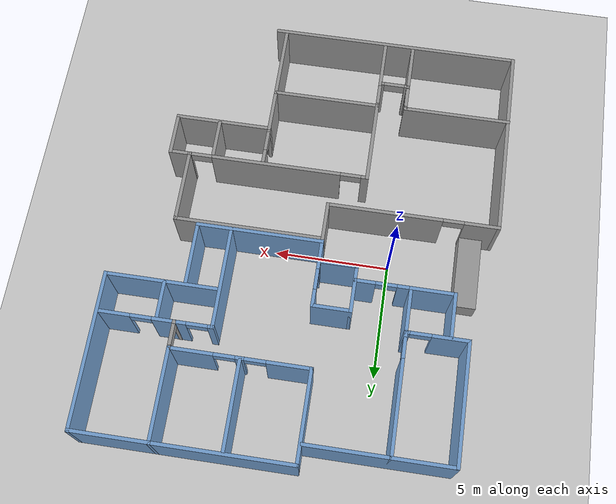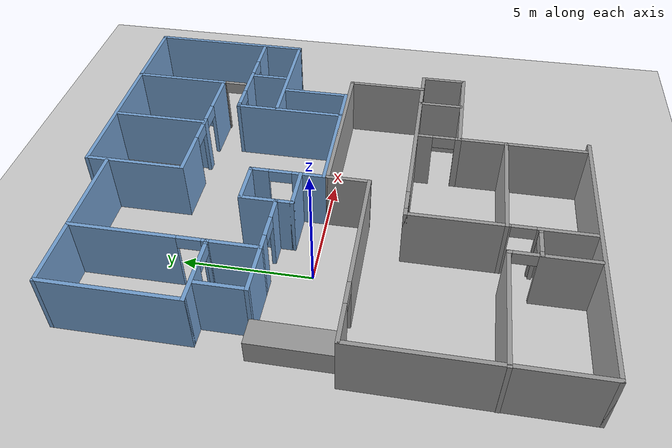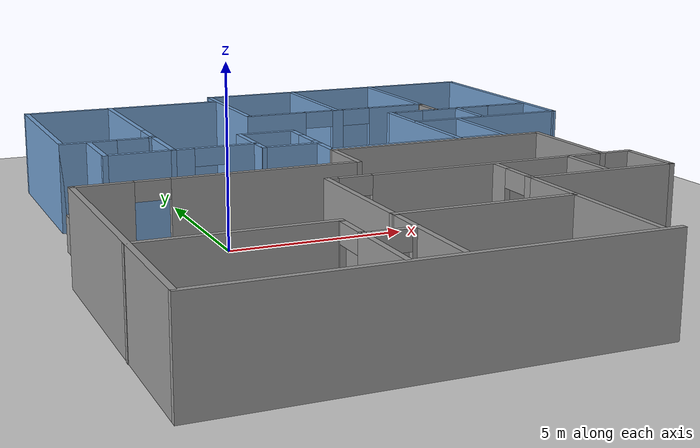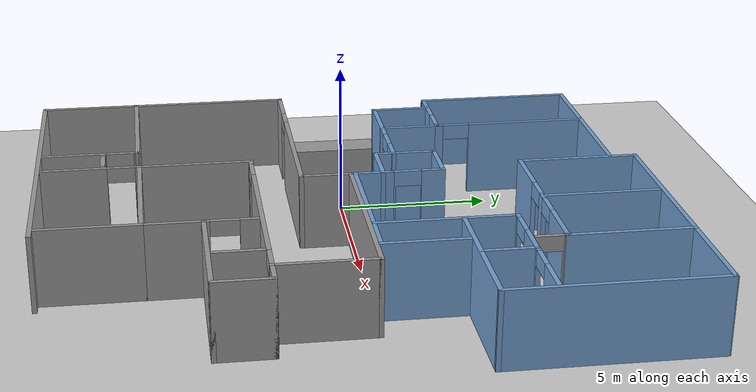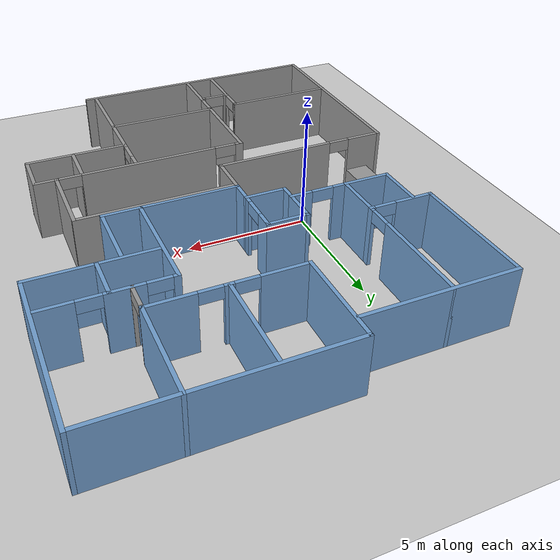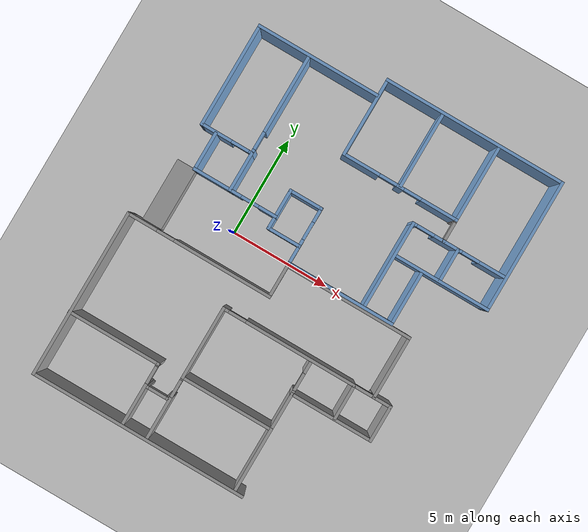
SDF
<sdf version="1.7">
 <world name="default">
  <light name="sun" type="directional">
   <pose>0 0 10 0 -0 0</pose>
   <diffuse>0.8 0.8 0.8 1</diffuse>
   <specular>0.2 0.2 0.2 1</specular>
   <attenuation>
    <range>1000</range>
    <constant>0.9</constant>
    <linear>0.01</linear>
    <quadratic>0.001</quadratic>
   </attenuation>
   <direction>-0.5 0.1 -0.9</direction>
   <spot><inner_angle>0</inner_angle><outer_angle>0</outer_angle><falloff>0</falloff></spot>
  </light>
  <model name="ground_plane">
   <static>1</static>
   <link name="link">
    <collision name="collision">
     <geometry><plane><normal>0 0 1</normal><size>100 100</size></plane></geometry>
     <surface>
      <contact><collide_bitmask>65535</collide_bitmask></contact>
      <friction><ode><mu>100</mu><mu2>50</mu2></ode></friction>
     </surface>
    </collision>
    <visual name="visual">
     <cast_shadows>0</cast_shadows>
     <geometry><plane><normal>0 0 1</normal><size>100 100</size></plane></geometry>
     <material>
      <script><uri>file://media/materials/scripts/gazebo.material</uri><name>Gazebo/Grey</name></script>
     </material>
    </visual>
   </link>
  </model>
  <gravity>0 0 -9.8</gravity>
  <magnetic_field>6e-06 2.3e-05 -4.2e-05</magnetic_field>
  <atmosphere type="adiabatic"/>
  <physics type="ode">
   <max_step_size>0.001</max_step_size>
   <real_time_factor>1</real_time_factor>
   <real_time_update_rate>1000</real_time_update_rate>
  </physics>
  <scene><ambient>0.4 0.4 0.4 1</ambient><background>0.7 0.7 0.7 1</background><shadows>1</shadows></scene>
  <spherical_coordinates>
   <surface_model>EARTH_WGS84</surface_model>
   <latitude_deg>0</latitude_deg>
   <longitude_deg>0</longitude_deg>
   <elevation>0</elevation>
   <heading_deg>0</heading_deg>
  </spherical_coordinates>
  <model name="3gen-hdb">
   <pose>4.04896 4.75247 0 0 -0 0</pose>
   <link name="Wall_18">
    <collision name="Wall_18_Collision">
     <geometry><box><size>6.25 0.15 2.5</size></box></geometry>
     <pose>0 0 1.25 0 -0 0</pose>
    </collision>
    <visual name="Wall_18_Visual">
     <pose>0 0 1.25 0 -0 0</pose>
     <geometry><box><size>6.25 0.15 2.5</size></box></geometry>
     <material>
      <script><uri>file://media/materials/scripts/gazebo.material</uri><name>Gazebo/Grey</name></script>
      <ambient>0.447059 0.623529 0.811765 1</ambient>
     </material>
     <meta><layer>0</layer></meta>
    </visual>
    <pose>-4.59169 3.83833 0 0 -0 3.14159</pose>
   </link>
   <link name="Wall_19">
    <collision name="Wall_19_Collision">
     <geometry><box><size>5.25 0.15 2.5</size></box></geometry>
     <pose>0 0 1.25 0 -0 0</pose>
    </collision>
    <visual name="Wall_19_Visual">
     <pose>0 0 1.25 0 -0 0</pose>
     <geometry><box><size>5.25 0.15 2.5</size></box></geometry>
     <material>
      <script><uri>file://media/materials/scripts/gazebo.material</uri><name>Gazebo/Grey</name></script>
      <ambient>0.447059 0.623529 0.811765 1</ambient>
     </material>
     <meta><layer>0</layer></meta>
    </visual>
    <pose>-7.64169 1.28833 0 0 -0 -1.5708</pose>
   </link>
   <link name="Wall_33">
    <collision name="Wall_33_Collision">
     <geometry><box><size>2.0587 0.15 2.5</size></box></geometry>
     <pose>0 0 1.25 0 -0 0</pose>
    </collision>
    <visual name="Wall_33_Visual">
     <pose>0 0 1.25 0 -0 0</pose>
     <geometry><box><size>2.0587 0.15 2.5</size></box></geometry>
     <material>
      <script><uri>file://media/materials/scripts/gazebo.material</uri><name>Gazebo/Grey</name></script>
      <ambient>0.447059 0.623529 0.811765 1</ambient>
     </material>
     <meta><layer>0</layer></meta>
    </visual>
    <pose>-5.04169 -2.21602 0 0 -0 1.5708</pose>
   </link>
   <link name="Wall_40">
    <pose>-3.86669 -3.17036 0 0 -0 0</pose>
    <visual name="Wall_40_Visual_0">
     <pose>-0.921393 0 1.25 0 -0 0</pose>
     <geometry><box><size>0.657214 0.15 2.5</size></box></geometry>
     <material>
      <script><uri>file://media/materials/scripts/gazebo.material</uri><name>Gazebo/Grey</name></script>
      <ambient>0.447059 0.623529 0.811765 1</ambient>
     </material>
     <meta><layer>0</layer></meta>
    </visual>
    <collision name="Wall_40_Collision_0">
     <geometry><box><size>0.657214 0.15 2.5</size></box></geometry>
     <pose>-0.921393 0 1.25 0 -0 0</pose>
    </collision>
    <visual name="Wall_40_Visual_1">
     <pose>0.778607 0 1.25 0 -0 0</pose>
     <geometry><box><size>0.942786 0.15 2.5</size></box></geometry>
     <material>
      <script><uri>file://media/materials/scripts/gazebo.material</uri><name>Gazebo/Grey</name></script>
      <ambient>0.447059 0.623529 0.811765 1</ambient>
     </material>
     <meta><layer>0</layer></meta>
    </visual>
    <collision name="Wall_40_Collision_1">
     <geometry><box><size>0.942786 0.15 2.5</size></box></geometry>
     <pose>0.778607 0 1.25 0 -0 0</pose>
    </collision>
    <visual name="Wall_40_Visual_2">
     <pose>-0.142786 0 2.25 0 -0 0</pose>
     <geometry><box><size>0.9 0.15 0.5</size></box></geometry>
     <material>
      <script><uri>file://media/materials/scripts/gazebo.material</uri><name>Gazebo/Grey</name></script>
      <ambient>0.447059 0.623529 0.811765 1</ambient>
     </material>
     <meta><layer>0</layer></meta>
    </visual>
    <collision name="Wall_40_Collision_2">
     <geometry><box><size>0.9 0.15 0.5</size></box></geometry>
     <pose>-0.142786 0 2.25 0 -0 0</pose>
    </collision>
   </link>
   <link name="Wall_41">
    <collision name="Wall_41_Collision">
     <geometry><box><size>1.5 0.15 2.5</size></box></geometry>
     <pose>0 0 1.25 0 -0 0</pose>
    </collision>
    <visual name="Wall_41_Visual">
     <pose>0 0 1.25 0 -0 0</pose>
     <geometry><box><size>1.5 0.15 2.5</size></box></geometry>
     <material>
      <script><uri>file://media/materials/scripts/gazebo.material</uri><name>Gazebo/Grey</name></script>
      <ambient>0.447059 0.623529 0.811765 1</ambient>
     </material>
     <meta><layer>0</layer></meta>
    </visual>
    <pose>-2.69169 -2.49536 0 0 -0 1.5708</pose>
   </link>
   <link name="Wall_42">
    <collision name="Wall_42_Collision">
     <geometry><box><size>1.75 0.15 2.5</size></box></geometry>
     <pose>0 0 1.25 0 -0 0</pose>
    </collision>
    <visual name="Wall_42_Visual">
     <pose>0 0 1.25 0 -0 0</pose>
     <geometry><box><size>1.75 0.15 2.5</size></box></geometry>
     <material>
      <script><uri>file://media/materials/scripts/gazebo.material</uri><name>Gazebo/Grey</name></script>
      <ambient>0.447059 0.623529 0.811765 1</ambient>
     </material>
     <meta><layer>0</layer></meta>
    </visual>
    <pose>-1.89169 -1.82036 0 0 -0 0</pose>
   </link>
   <link name="Wall_43">
    <pose>-1.09169 -3.24536 0 0 -0 -1.5708</pose>
    <visual name="Wall_43_Visual_0">
     <pose>-1.11045 0 1.25 0 -0 0</pose>
     <geometry><box><size>0.779095 0.15 2.5</size></box></geometry>
     <material>
      <script><uri>file://media/materials/scripts/gazebo.material</uri><name>Gazebo/Grey</name></script>
      <ambient>0.447059 0.623529 0.811765 1</ambient>
     </material>
     <meta><layer>0</layer></meta>
    </visual>
    <collision name="Wall_43_Collision_0">
     <geometry><box><size>0.779095 0.15 2.5</size></box></geometry>
     <pose>-1.11045 0 1.25 0 -0 0</pose>
    </collision>
    <visual name="Wall_43_Visual_1">
     <pose>0.839547 0 1.25 0 -0 0</pose>
     <geometry><box><size>1.3209 0.15 2.5</size></box></geometry>
     <material>
      <script><uri>file://media/materials/scripts/gazebo.material</uri><name>Gazebo/Grey</name></script>
      <ambient>0.447059 0.623529 0.811765 1</ambient>
     </material>
     <meta><layer>0</layer></meta>
    </visual>
    <collision name="Wall_43_Collision_1">
     <geometry><box><size>1.3209 0.15 2.5</size></box></geometry>
     <pose>0.839547 0 1.25 0 -0 0</pose>
    </collision>
    <visual name="Wall_43_Visual_2">
     <pose>-0.270905 0 2.25 0 -0 0</pose>
     <geometry><box><size>0.9 0.15 0.5</size></box></geometry>
     <material>
      <script><uri>file://media/materials/scripts/gazebo.material</uri><name>Gazebo/Grey</name></script>
      <ambient>0.447059 0.623529 0.811765 1</ambient>
     </material>
     <meta><layer>0</layer></meta>
    </visual>
    <collision name="Wall_43_Collision_2">
     <geometry><box><size>0.9 0.15 0.5</size></box></geometry>
     <pose>-0.270905 0 2.25 0 -0 0</pose>
    </collision>
   </link>
   <link name="Wall_44">
    <collision name="Wall_44_Collision">
     <geometry><box><size>5.5 0.15 2.5</size></box></geometry>
     <pose>0 0 1.25 0 -0 0</pose>
    </collision>
    <visual name="Wall_44_Visual">
     <pose>0 0 1.25 0 -0 0</pose>
     <geometry><box><size>5.5 0.15 2.5</size></box></geometry>
     <material>
      <script><uri>file://media/materials/scripts/gazebo.material</uri><name>Gazebo/Grey</name></script>
      <ambient>0.447059 0.623529 0.811765 1</ambient>
     </material>
     <meta><layer>0</layer></meta>
    </visual>
    <pose>1.58331 -4.67036 0 0 -0 0</pose>
   </link>
   <link name="Wall_45">
    <collision name="Wall_45_Collision">
     <geometry><box><size>2.75 0.15 2.5</size></box></geometry>
     <pose>0 0 1.25 0 -0 0</pose>
    </collision>
    <visual name="Wall_45_Visual">
     <pose>0 0 1.25 0 -0 0</pose>
     <geometry><box><size>2.75 0.15 2.5</size></box></geometry>
     <material>
      <script><uri>file://media/materials/scripts/gazebo.material</uri><name>Gazebo/Grey</name></script>
      <ambient>0.447059 0.623529 0.811765 1</ambient>
     </material>
     <meta><layer>0</layer></meta>
    </visual>
    <pose>4.25831 -3.37036 0 0 -0 1.5708</pose>
   </link>
   <link name="Wall_47">
    <collision name="Wall_47_Collision">
     <geometry><box><size>4.5 0.15 2.5</size></box></geometry>
     <pose>0 0 1.25 0 -0 0</pose>
    </collision>
    <visual name="Wall_47_Visual">
     <pose>0 0 1.25 0 -0 0</pose>
     <geometry><box><size>4.5 0.15 2.5</size></box></geometry>
     <material>
      <script><uri>file://media/materials/scripts/gazebo.material</uri><name>Gazebo/Grey</name></script>
      <ambient>0.447059 0.623529 0.811765 1</ambient>
     </material>
     <meta><layer>0</layer></meta>
    </visual>
    <pose>2.80456 -2.46127 0 0 -0 -1.5708</pose>
   </link>
   <link name="Wall_49">
    <collision name="Wall_49_Collision">
     <geometry><box><size>0.75 0.15 2.5</size></box></geometry>
     <pose>0 0 1.25 0 -0 0</pose>
    </collision>
    <visual name="Wall_49_Visual">
     <pose>0 0 1.25 0 -0 0</pose>
     <geometry><box><size>0.75 0.15 2.5</size></box></geometry>
     <material>
      <script><uri>file://media/materials/scripts/gazebo.material</uri><name>Gazebo/Grey</name></script>
      <ambient>0.447059 0.623529 0.811765 1</ambient>
     </material>
     <meta><layer>0</layer></meta>
    </visual>
    <pose>-2.69169 -3.47036 0 0 -0 -1.5708</pose>
   </link>
   <link name="Wall_50">
    <collision name="Wall_50_Collision">
     <geometry><box><size>1.75 0.15 2.5</size></box></geometry>
     <pose>0 0 1.25 0 -0 0</pose>
    </collision>
    <visual name="Wall_50_Visual">
     <pose>0 0 1.25 0 -0 0</pose>
     <geometry><box><size>1.75 0.15 2.5</size></box></geometry>
     <material>
      <script><uri>file://media/materials/scripts/gazebo.material</uri><name>Gazebo/Grey</name></script>
      <ambient>0.447059 0.623529 0.811765 1</ambient>
     </material>
     <meta><layer>0</layer></meta>
    </visual>
    <pose>-1.89169 -3.77036 0 0 -0 0</pose>
   </link>
   <link name="Wall_52">
    <collision name="Wall_52_Collision">
     <geometry><box><size>4.9 0.15 2.5</size></box></geometry>
     <pose>0 0 1.25 0 -0 0</pose>
    </collision>
    <visual name="Wall_52_Visual">
     <pose>0 0 1.25 0 -0 0</pose>
     <geometry><box><size>4.9 0.15 2.5</size></box></geometry>
     <material>
      <script><uri>file://media/materials/scripts/gazebo.material</uri><name>Gazebo/Grey</name></script>
      <ambient>0.447059 0.623529 0.811765 1</ambient>
     </material>
     <meta><layer>0</layer></meta>
    </visual>
    <pose>5.26669 -1.92964 0 0 -0 0</pose>
   </link>
   <link name="Wall_53">
    <collision name="Wall_53_Collision">
     <geometry><box><size>6.75 0.15 2.5</size></box></geometry>
     <pose>0 0 1.25 0 -0 0</pose>
    </collision>
    <visual name="Wall_53_Visual">
     <pose>0 0 1.25 0 -0 0</pose>
     <geometry><box><size>6.75 0.15 2.5</size></box></geometry>
     <material>
      <script><uri>file://media/materials/scripts/gazebo.material</uri><name>Gazebo/Grey</name></script>
      <ambient>0.447059 0.623529 0.811765 1</ambient>
     </material>
     <meta><layer>0</layer></meta>
    </visual>
    <pose>7.6414 1.37036 0 0 -0 1.57088</pose>
   </link>
   <link name="Wall_54">
    <collision name="Wall_54_Collision">
     <geometry><box><size>9.25 0.15 2.5</size></box></geometry>
     <pose>0 0 1.25 0 -0 0</pose>
    </collision>
    <visual name="Wall_54_Visual">
     <pose>0 0 1.25 0 -0 0</pose>
     <geometry><box><size>9.25 0.15 2.5</size></box></geometry>
     <material>
      <script><uri>file://media/materials/scripts/gazebo.material</uri><name>Gazebo/Grey</name></script>
      <ambient>0.447059 0.623529 0.811765 1</ambient>
     </material>
     <meta><layer>0</layer></meta>
    </visual>
    <pose>3.09112 4.67036 0 0 -0 3.14159</pose>
   </link>
   <link name="Wall_55">
    <collision name="Wall_55_Collision">
     <geometry><box><size>4 0.15 2.5</size></box></geometry>
     <pose>0 0 1.25 0 -0 0</pose>
    </collision>
    <visual name="Wall_55_Visual">
     <pose>0 0 1.25 0 -0 0</pose>
     <geometry><box><size>4 0.15 2.5</size></box></geometry>
     <material>
      <script><uri>file://media/materials/scripts/gazebo.material</uri><name>Gazebo/Grey</name></script>
      <ambient>0.447059 0.623529 0.811765 1</ambient>
     </material>
     <meta><layer>0</layer></meta>
    </visual>
    <pose>-1.45888 2.74536 0 0 -0 -1.5708</pose>
   </link>
   <link name="Wall_56">
    <pose>1.46612 0.820358 0 0 -0 0</pose>
    <visual name="Wall_56_Visual_0">
     <pose>-2.03601 0 1.25 0 -0 0</pose>
     <geometry><box><size>1.92798 0.15 2.5</size></box></geometry>
     <material>
      <script><uri>file://media/materials/scripts/gazebo.material</uri><name>Gazebo/Grey</name></script>
      <ambient>0.447059 0.623529 0.811765 1</ambient>
     </material>
     <meta><layer>0</layer></meta>
    </visual>
    <collision name="Wall_56_Collision_0">
     <geometry><box><size>1.92798 0.15 2.5</size></box></geometry>
     <pose>-2.03601 0 1.25 0 -0 0</pose>
    </collision>
    <visual name="Wall_56_Visual_1">
     <pose>0.012779 0 1.25 0 -0 0</pose>
     <geometry><box><size>0.3696 0.15 2.5</size></box></geometry>
     <material>
      <script><uri>file://media/materials/scripts/gazebo.material</uri><name>Gazebo/Grey</name></script>
      <ambient>0.447059 0.623529 0.811765 1</ambient>
     </material>
     <meta><layer>0</layer></meta>
    </visual>
    <collision name="Wall_56_Collision_1">
     <geometry><box><size>0.3696 0.15 2.5</size></box></geometry>
     <pose>0.012779 0 1.25 0 -0 0</pose>
    </collision>
    <visual name="Wall_56_Visual_2">
     <pose>2.04879 0 1.25 0 -0 0</pose>
     <geometry><box><size>1.90242 0.15 2.5</size></box></geometry>
     <material>
      <script><uri>file://media/materials/scripts/gazebo.material</uri><name>Gazebo/Grey</name></script>
      <ambient>0.447059 0.623529 0.811765 1</ambient>
     </material>
     <meta><layer>0</layer></meta>
    </visual>
    <collision name="Wall_56_Collision_2">
     <geometry><box><size>1.90242 0.15 2.5</size></box></geometry>
     <pose>2.04879 0 1.25 0 -0 0</pose>
    </collision>
    <visual name="Wall_56_Visual_3">
     <pose>-0.622021 0 2.25 0 -0 0</pose>
     <geometry><box><size>0.9 0.15 0.5</size></box></geometry>
     <material>
      <script><uri>file://media/materials/scripts/gazebo.material</uri><name>Gazebo/Grey</name></script>
      <ambient>0.447059 0.623529 0.811765 1</ambient>
     </material>
     <meta><layer>0</layer></meta>
    </visual>
    <collision name="Wall_56_Collision_3">
     <geometry><box><size>0.9 0.15 0.5</size></box></geometry>
     <pose>-0.622021 0 2.25 0 -0 0</pose>
    </collision>
    <visual name="Wall_56_Visual_4">
     <pose>0.647579 0 2.25 0 -0 0</pose>
     <geometry><box><size>0.9 0.15 0.5</size></box></geometry>
     <material>
      <script><uri>file://media/materials/scripts/gazebo.material</uri><name>Gazebo/Grey</name></script>
      <ambient>0.447059 0.623529 0.811765 1</ambient>
     </material>
     <meta><layer>0</layer></meta>
    </visual>
    <collision name="Wall_56_Collision_4">
     <geometry><box><size>0.9 0.15 0.5</size></box></geometry>
     <pose>0.647579 0 2.25 0 -0 0</pose>
    </collision>
   </link>
   <link name="Wall_57">
    <collision name="Wall_57_Collision">
     <geometry><box><size>4 0.15 2.5</size></box></geometry>
     <pose>0 0 1.25 0 -0 0</pose>
    </collision>
    <visual name="Wall_57_Visual">
     <pose>0 0 1.25 0 -0 0</pose>
     <geometry><box><size>4 0.15 2.5</size></box></geometry>
     <material>
      <script><uri>file://media/materials/scripts/gazebo.material</uri><name>Gazebo/Grey</name></script>
      <ambient>0.447059 0.623529 0.811765 1</ambient>
     </material>
     <meta><layer>0</layer></meta>
    </visual>
    <pose>4.39112 2.74536 0 0 -0 1.5708</pose>
   </link>
   <link name="Wall_59">
    <collision name="Wall_59_Collision">
     <geometry><box><size>3.8 0.15 2.5</size></box></geometry>
     <pose>0 0 1.25 0 -0 0</pose>
    </collision>
    <visual name="Wall_59_Visual">
     <pose>0 0 1.25 0 -0 0</pose>
     <geometry><box><size>3.8 0.15 2.5</size></box></geometry>
     <material>
      <script><uri>file://media/materials/scripts/gazebo.material</uri><name>Gazebo/Grey</name></script>
      <ambient>0.447059 0.623529 0.811765 1</ambient>
     </material>
     <meta><layer>0</layer></meta>
    </visual>
    <pose>1.4598 2.71859 0 0 -0 -1.5708</pose>
   </link>
   <link name="Wall_61">
    <pose>5.15456 -0.286267 0 0 -0 0</pose>
    <visual name="Wall_61_Visual_0">
     <pose>-2.29007 0 1.25 0 -0 0</pose>
     <geometry><box><size>0.269865 0.15 2.5</size></box></geometry>
     <material>
      <script><uri>file://media/materials/scripts/gazebo.material</uri><name>Gazebo/Grey</name></script>
      <ambient>0.447059 0.623529 0.811765 1</ambient>
     </material>
     <meta><layer>0</layer></meta>
    </visual>
    <collision name="Wall_61_Collision_0">
     <geometry><box><size>0.269865 0.15 2.5</size></box></geometry>
     <pose>-2.29007 0 1.25 0 -0 0</pose>
    </collision>
    <visual name="Wall_61_Visual_1">
     <pose>-0.534722 0 1.25 0 -0 0</pose>
     <geometry><box><size>1.44083 0.15 2.5</size></box></geometry>
     <material>
      <script><uri>file://media/materials/scripts/gazebo.material</uri><name>Gazebo/Grey</name></script>
      <ambient>0.447059 0.623529 0.811765 1</ambient>
     </material>
     <meta><layer>0</layer></meta>
    </visual>
    <collision name="Wall_61_Collision_1">
     <geometry><box><size>1.44083 0.15 2.5</size></box></geometry>
     <pose>-0.534722 0 1.25 0 -0 0</pose>
    </collision>
    <visual name="Wall_61_Visual_2">
     <pose>1.75534 0 1.25 0 -0 0</pose>
     <geometry><box><size>1.33931 0.15 2.5</size></box></geometry>
     <material>
      <script><uri>file://media/materials/scripts/gazebo.material</uri><name>Gazebo/Grey</name></script>
      <ambient>0.447059 0.623529 0.811765 1</ambient>
     </material>
     <meta><layer>0</layer></meta>
    </visual>
    <collision name="Wall_61_Collision_2">
     <geometry><box><size>1.33931 0.15 2.5</size></box></geometry>
     <pose>1.75534 0 1.25 0 -0 0</pose>
    </collision>
    <visual name="Wall_61_Visual_3">
     <pose>-1.70514 0 2.25 0 -0 0</pose>
     <geometry><box><size>0.9 0.15 0.5</size></box></geometry>
     <material>
      <script><uri>file://media/materials/scripts/gazebo.material</uri><name>Gazebo/Grey</name></script>
      <ambient>0.447059 0.623529 0.811765 1</ambient>
     </material>
     <meta><layer>0</layer></meta>
    </visual>
    <collision name="Wall_61_Collision_3">
     <geometry><box><size>0.9 0.15 0.5</size></box></geometry>
     <pose>-1.70514 0 2.25 0 -0 0</pose>
    </collision>
    <visual name="Wall_61_Visual_4">
     <pose>0.63569 0 2.25 0 -0 0</pose>
     <geometry><box><size>0.9 0.15 0.5</size></box></geometry>
     <material>
      <script><uri>file://media/materials/scripts/gazebo.material</uri><name>Gazebo/Grey</name></script>
      <ambient>0.447059 0.623529 0.811765 1</ambient>
     </material>
     <meta><layer>0</layer></meta>
    </visual>
    <collision name="Wall_61_Collision_4">
     <geometry><box><size>0.9 0.15 0.5</size></box></geometry>
     <pose>0.63569 0 2.25 0 -0 0</pose>
    </collision>
   </link>
   <link name="Wall_63">
    <collision name="Wall_63_Collision">
     <geometry><box><size>1.75 0.15 2.5</size></box></geometry>
     <pose>0 0 1.25 0 -0 0</pose>
    </collision>
    <visual name="Wall_63_Visual">
     <pose>0 0 1.25 0 -0 0</pose>
     <geometry><box><size>1.75 0.15 2.5</size></box></geometry>
     <material>
      <script><uri>file://media/materials/scripts/gazebo.material</uri><name>Gazebo/Grey</name></script>
      <ambient>0.447059 0.623529 0.811765 1</ambient>
     </material>
     <meta><layer>0</layer></meta>
    </visual>
    <pose>5.13445 -1.09102 0 0 -0 1.5708</pose>
   </link>
   <link name="Wall_65">
    <pose>4.39112 0.270358 0 0 -0 -1.5708</pose>
    <visual name="Wall_65_Visual_0">
     <pose>-0.528542 0 1.25 0 -0 0</pose>
     <geometry><box><size>0.192916 0.15 2.5</size></box></geometry>
     <material>
      <script><uri>file://media/materials/scripts/gazebo.material</uri><name>Gazebo/Grey</name></script>
      <ambient>1 1 1 1</ambient>
     </material>
     <meta><layer>0</layer></meta>
    </visual>
    <collision name="Wall_65_Collision_0">
     <geometry><box><size>0.192916 0.15 2.5</size></box></geometry>
     <pose>-0.528542 0 1.25 0 -0 0</pose>
    </collision>
    <visual name="Wall_65_Visual_1">
     <pose>0.546458 0 1.25 0 -0 0</pose>
     <geometry><box><size>0.157084 0.15 2.5</size></box></geometry>
     <material>
      <script><uri>file://media/materials/scripts/gazebo.material</uri><name>Gazebo/Grey</name></script>
      <ambient>1 1 1 1</ambient>
     </material>
     <meta><layer>0</layer></meta>
    </visual>
    <collision name="Wall_65_Collision_1">
     <geometry><box><size>0.157084 0.15 2.5</size></box></geometry>
     <pose>0.546458 0 1.25 0 -0 0</pose>
    </collision>
    <visual name="Wall_65_Visual_2">
     <pose>0.017916 0 2.25 0 -0 0</pose>
     <geometry><box><size>0.9 0.15 0.5</size></box></geometry>
     <material>
      <script><uri>file://media/materials/scripts/gazebo.material</uri><name>Gazebo/Grey</name></script>
      <ambient>1 1 1 1</ambient>
     </material>
     <meta><layer>0</layer></meta>
    </visual>
    <collision name="Wall_65_Collision_2">
     <geometry><box><size>0.9 0.15 0.5</size></box></geometry>
     <pose>0.017916 0 2.25 0 -0 0</pose>
    </collision>
   </link>
   <link name="Wall_67">
    <pose>-5.04169 1.28833 0 0 -0 1.5708</pose>
    <visual name="Wall_67_Visual_0">
     <pose>-2.48526 0 1.25 0 -0 0</pose>
     <geometry><box><size>0.279485 0.15 2.5</size></box></geometry>
     <material>
      <script><uri>file://media/materials/scripts/gazebo.material</uri><name>Gazebo/Grey</name></script>
      <ambient>0.447059 0.623529 0.811765 1</ambient>
     </material>
     <meta><layer>0</layer></meta>
    </visual>
    <collision name="Wall_67_Collision_0">
     <geometry><box><size>0.279485 0.15 2.5</size></box></geometry>
     <pose>-2.48526 0 1.25 0 -0 0</pose>
    </collision>
    <visual name="Wall_67_Visual_1">
     <pose>0.589742 0 1.25 0 -0 0</pose>
     <geometry><box><size>4.07052 0.15 2.5</size></box></geometry>
     <material>
      <script><uri>file://media/materials/scripts/gazebo.material</uri><name>Gazebo/Grey</name></script>
      <ambient>0.447059 0.623529 0.811765 1</ambient>
     </material>
     <meta><layer>0</layer></meta>
    </visual>
    <collision name="Wall_67_Collision_1">
     <geometry><box><size>4.07052 0.15 2.5</size></box></geometry>
     <pose>0.589742 0 1.25 0 -0 0</pose>
    </collision>
    <visual name="Wall_67_Visual_2">
     <pose>-1.89552 0 2.25 0 -0 0</pose>
     <geometry><box><size>0.9 0.15 0.5</size></box></geometry>
     <material>
      <script><uri>file://media/materials/scripts/gazebo.material</uri><name>Gazebo/Grey</name></script>
      <ambient>0.447059 0.623529 0.811765 1</ambient>
     </material>
     <meta><layer>0</layer></meta>
    </visual>
    <collision name="Wall_67_Collision_2">
     <geometry><box><size>0.9 0.15 0.5</size></box></geometry>
     <pose>-1.89552 0 2.25 0 -0 0</pose>
    </collision>
   </link>
   <link name="Wall_70">
    <pose>-6.34169 -1.26167 0 0 -0 0</pose>
    <visual name="Wall_70_Visual_0">
     <pose>-0.566343 0 1.25 0 -0 0</pose>
     <geometry><box><size>1.61731 0.15 2.5</size></box></geometry>
     <material>
      <script><uri>file://media/materials/scripts/gazebo.material</uri><name>Gazebo/Grey</name></script>
      <ambient>0.447059 0.623529 0.811765 1</ambient>
     </material>
     <meta><layer>0</layer></meta>
    </visual>
    <collision name="Wall_70_Collision_0">
     <geometry><box><size>1.61731 0.15 2.5</size></box></geometry>
     <pose>-0.566343 0 1.25 0 -0 0</pose>
    </collision>
    <visual name="Wall_70_Visual_1">
     <pose>1.25866 0 1.25 0 -0 0</pose>
     <geometry><box><size>0.232686 0.15 2.5</size></box></geometry>
     <material>
      <script><uri>file://media/materials/scripts/gazebo.material</uri><name>Gazebo/Grey</name></script>
      <ambient>0.447059 0.623529 0.811765 1</ambient>
     </material>
     <meta><layer>0</layer></meta>
    </visual>
    <collision name="Wall_70_Collision_1">
     <geometry><box><size>0.232686 0.15 2.5</size></box></geometry>
     <pose>1.25866 0 1.25 0 -0 0</pose>
    </collision>
    <visual name="Wall_70_Visual_2">
     <pose>0.692314 0 2.25 0 -0 0</pose>
     <geometry><box><size>0.9 0.15 0.5</size></box></geometry>
     <material>
      <script><uri>file://media/materials/scripts/gazebo.material</uri><name>Gazebo/Grey</name></script>
      <ambient>0.447059 0.623529 0.811765 1</ambient>
     </material>
     <meta><layer>0</layer></meta>
    </visual>
    <collision name="Wall_70_Collision_2">
     <geometry><box><size>0.9 0.15 0.5</size></box></geometry>
     <pose>0.692314 0 2.25 0 -0 0</pose>
    </collision>
   </link>
   <link name="Wall_74">
    <collision name="Wall_74_Collision">
     <geometry><box><size>2 0.15 2.5</size></box></geometry>
     <pose>0 0 1.25 0 -0 0</pose>
    </collision>
    <visual name="Wall_74_Visual">
     <pose>0 0 1.25 0 -0 0</pose>
     <geometry><box><size>2 0.15 2.5</size></box></geometry>
     <material>
      <script><uri>file://media/materials/scripts/gazebo.material</uri><name>Gazebo/Grey</name></script>
      <ambient>0.447059 0.623529 0.811765 1</ambient>
     </material>
     <meta><layer>0</layer></meta>
    </visual>
    <pose>-5.96669 -3.17036 0 0 -0 3.14159</pose>
   </link>
   <link name="Wall_75">
    <collision name="Wall_75_Collision">
     <geometry><box><size>2 0.15 2.5</size></box></geometry>
     <pose>0 0 1.25 0 -0 0</pose>
    </collision>
    <visual name="Wall_75_Visual">
     <pose>0 0 1.25 0 -0 0</pose>
     <geometry><box><size>2 0.15 2.5</size></box></geometry>
     <material>
      <script><uri>file://media/materials/scripts/gazebo.material</uri><name>Gazebo/Grey</name></script>
      <ambient>0.447059 0.623529 0.811765 1</ambient>
     </material>
     <meta><layer>0</layer></meta>
    </visual>
    <pose>-6.89169 -2.24536 0 0 -0 1.5708</pose>
   </link>
   <static>1</static>
  </model>
  <model name="4roomhdb">
   <pose>2.87299 -5.02691 0 0 0 -1.57127</pose>
   <link name="Wall_0">
    <pose>-3.375 -3.59302 0 0 -0 1.5708</pose>
    <visual name="Wall_0_Visual_0">
     <pose>-2.97204 0 1.25 0 -0 0</pose>
     <geometry><box><size>1.55591 0.15 2.5</size></box></geometry>
     <material>
      <script><uri>file://media/materials/scripts/gazebo.material</uri><name>Gazebo/Grey</name></script>
      <ambient>1 1 1 1</ambient>
     </material>
     <meta><layer>0</layer></meta>
    </visual>
    <collision name="Wall_0_Collision_0">
     <geometry><box><size>1.55591 0.15 2.5</size></box></geometry>
     <pose>-2.97204 0 1.25 0 -0 0</pose>
    </collision>
    <visual name="Wall_0_Visual_1">
     <pose>1.22796 0 1.25 0 -0 0</pose>
     <geometry><box><size>5.04408 0.15 2.5</size></box></geometry>
     <material>
      <script><uri>file://media/materials/scripts/gazebo.material</uri><name>Gazebo/Grey</name></script>
      <ambient>1 1 1 1</ambient>
     </material>
     <meta><layer>0</layer></meta>
    </visual>
    <collision name="Wall_0_Collision_1">
     <geometry><box><size>5.04408 0.15 2.5</size></box></geometry>
     <pose>1.22796 0 1.25 0 -0 0</pose>
    </collision>
    <visual name="Wall_0_Visual_2">
     <pose>-1.74409 0 2.25 0 -0 0</pose>
     <geometry><box><size>0.9 0.15 0.5</size></box></geometry>
     <material>
      <script><uri>file://media/materials/scripts/gazebo.material</uri><name>Gazebo/Grey</name></script>
      <ambient>1 1 1 1</ambient>
     </material>
     <meta><layer>0</layer></meta>
    </visual>
    <collision name="Wall_0_Collision_2">
     <geometry><box><size>0.9 0.15 0.5</size></box></geometry>
     <pose>-1.74409 0 2.25 0 -0 0</pose>
    </collision>
   </link>
   <link name="Wall_1">
    <collision name="Wall_1_Collision">
     <geometry><box><size>1.75 0.15 2.5</size></box></geometry>
     <pose>0 0 1.25 0 -0 0</pose>
    </collision>
    <visual name="Wall_1_Visual">
     <pose>0 0 1.25 0 -0 0</pose>
     <geometry><box><size>1.75 0.15 2.5</size></box></geometry>
     <material>
      <script><uri>file://media/materials/scripts/gazebo.material</uri><name>Gazebo/Grey</name></script>
      <ambient>1 1 1 1</ambient>
     </material>
     <meta><layer>0</layer></meta>
    </visual>
    <pose>-4.175 0.081978 0 0 -0 3.14159</pose>
   </link>
   <link name="Wall_14">
    <collision name="Wall_14_Collision">
     <geometry><box><size>1 0.15 2.5</size></box></geometry>
     <pose>0 0 1.25 0 -0 0</pose>
    </collision>
    <visual name="Wall_14_Visual">
     <pose>0 0 1.25 0 -0 0</pose>
     <geometry><box><size>1 0.15 2.5</size></box></geometry>
     <material>
      <script><uri>file://media/materials/scripts/gazebo.material</uri><name>Gazebo/Grey</name></script>
      <ambient>1 1 1 1</ambient>
     </material>
     <meta><layer>0</layer></meta>
    </visual>
    <pose>-1.875 6.85698 0 0 -0 1.5708</pose>
   </link>
   <link name="Wall_15">
    <collision name="Wall_15_Collision">
     <geometry><box><size>1.9 0.15 2.5</size></box></geometry>
     <pose>0 0 1.25 0 -0 0</pose>
    </collision>
    <visual name="Wall_15_Visual">
     <pose>0 0 1.25 0 -0 0</pose>
     <geometry><box><size>1.9 0.15 2.5</size></box></geometry>
     <material>
      <script><uri>file://media/materials/scripts/gazebo.material</uri><name>Gazebo/Grey</name></script>
      <ambient>1 1 1 1</ambient>
     </material>
     <meta><layer>0</layer></meta>
    </visual>
    <pose>-1 7.28198 0 0 -0 0</pose>
   </link>
   <link name="Wall_17">
    <collision name="Wall_17_Collision">
     <geometry><box><size>1.75 0.15 2.5</size></box></geometry>
     <pose>0 0 1.25 0 -0 0</pose>
    </collision>
    <visual name="Wall_17_Visual">
     <pose>0 0 1.25 0 -0 0</pose>
     <geometry><box><size>1.75 0.15 2.5</size></box></geometry>
     <material>
      <script><uri>file://media/materials/scripts/gazebo.material</uri><name>Gazebo/Grey</name></script>
      <ambient>1 1 1 1</ambient>
     </material>
     <meta><layer>0</layer></meta>
    </visual>
    <pose>-0.982862 5.39991 0 0 -0 3.14159</pose>
   </link>
   <link name="Wall_19">
    <pose>-0.925 3.18198 0 0 -0 3.14159</pose>
    <visual name="Wall_19_Visual_0">
     <pose>-0.747837 0 1.25 0 -0 0</pose>
     <geometry><box><size>0.254325 0.15 2.5</size></box></geometry>
     <material>
      <script><uri>file://media/materials/scripts/gazebo.material</uri><name>Gazebo/Grey</name></script>
      <ambient>1 1 1 1</ambient>
     </material>
     <meta><layer>0</layer></meta>
    </visual>
    <collision name="Wall_19_Collision_0">
     <geometry><box><size>0.254325 0.15 2.5</size></box></geometry>
     <pose>-0.747837 0 1.25 0 -0 0</pose>
    </collision>
    <visual name="Wall_19_Visual_1">
     <pose>0.577163 0 1.25 0 -0 0</pose>
     <geometry><box><size>0.595675 0.15 2.5</size></box></geometry>
     <material>
      <script><uri>file://media/materials/scripts/gazebo.material</uri><name>Gazebo/Grey</name></script>
      <ambient>1 1 1 1</ambient>
     </material>
     <meta><layer>0</layer></meta>
    </visual>
    <collision name="Wall_19_Collision_1">
     <geometry><box><size>0.595675 0.15 2.5</size></box></geometry>
     <pose>0.577163 0 1.25 0 -0 0</pose>
    </collision>
    <visual name="Wall_19_Visual_2">
     <pose>-0.170675 0 2.25 0 -0 0</pose>
     <geometry><box><size>0.9 0.15 0.5</size></box></geometry>
     <material>
      <script><uri>file://media/materials/scripts/gazebo.material</uri><name>Gazebo/Grey</name></script>
      <ambient>1 1 1 1</ambient>
     </material>
     <meta><layer>0</layer></meta>
    </visual>
    <collision name="Wall_19_Collision_2">
     <geometry><box><size>0.9 0.15 0.5</size></box></geometry>
     <pose>-0.170675 0 2.25 0 -0 0</pose>
    </collision>
   </link>
   <link name="Wall_2">
    <collision name="Wall_2_Collision">
     <geometry><box><size>6.5 0.15 2.5</size></box></geometry>
     <pose>0 0 1.25 0 -0 0</pose>
    </collision>
    <visual name="Wall_2_Visual">
     <pose>0 0 1.25 0 -0 0</pose>
     <geometry><box><size>6.5 0.15 2.5</size></box></geometry>
     <material>
      <script><uri>file://media/materials/scripts/gazebo.material</uri><name>Gazebo/Grey</name></script>
      <ambient>1 1 1 1</ambient>
     </material>
     <meta><layer>0</layer></meta>
    </visual>
    <pose>-4.975 3.25698 0 0 -0 1.5708</pose>
   </link>
   <link name="Wall_21">
    <collision name="Wall_21_Collision">
     <geometry><box><size>8.5 0.15 2.5</size></box></geometry>
     <pose>0 0 1.25 0 -0 0</pose>
    </collision>
    <visual name="Wall_21_Visual">
     <pose>0 0 1.25 0 -0 0</pose>
     <geometry><box><size>8.5 0.15 2.5</size></box></geometry>
     <material>
      <script><uri>file://media/materials/scripts/gazebo.material</uri><name>Gazebo/Grey</name></script>
      <ambient>1 1 1 1</ambient>
     </material>
     <meta><layer>0</layer></meta>
    </visual>
    <pose>0.8 -7.26802 0 0 -0 0</pose>
   </link>
   <link name="Wall_28">
    <collision name="Wall_28_Collision">
     <geometry><box><size>11 0.15 2.5</size></box></geometry>
     <pose>0 0 1.25 0 -0 0</pose>
    </collision>
    <visual name="Wall_28_Visual">
     <pose>0 0 1.25 0 -0 0</pose>
     <geometry><box><size>11 0.15 2.5</size></box></geometry>
     <material>
      <script><uri>file://media/materials/scripts/gazebo.material</uri><name>Gazebo/Grey</name></script>
      <ambient>1 1 1 1</ambient>
     </material>
     <meta><layer>0</layer></meta>
    </visual>
    <pose>4.975 -1.84302 0 0 -0 1.5708</pose>
   </link>
   <link name="Wall_3">
    <collision name="Wall_3_Collision">
     <geometry><box><size>3.25 0.15 2.5</size></box></geometry>
     <pose>0 0 1.25 0 -0 0</pose>
    </collision>
    <visual name="Wall_3_Visual">
     <pose>0 0 1.25 0 -0 0</pose>
     <geometry><box><size>3.25 0.15 2.5</size></box></geometry>
     <material>
      <script><uri>file://media/materials/scripts/gazebo.material</uri><name>Gazebo/Grey</name></script>
      <ambient>1 1 1 1</ambient>
     </material>
     <meta><layer>0</layer></meta>
    </visual>
    <pose>-3.425 6.43198 0 0 -0 0</pose>
   </link>
   <link name="Wall_30">
    <collision name="Wall_30_Collision">
     <geometry><box><size>3.25 0.15 2.5</size></box></geometry>
     <pose>0 0 1.25 0 -0 0</pose>
    </collision>
    <visual name="Wall_30_Visual">
     <pose>0 0 1.25 0 -0 0</pose>
     <geometry><box><size>3.25 0.15 2.5</size></box></geometry>
     <material>
      <script><uri>file://media/materials/scripts/gazebo.material</uri><name>Gazebo/Grey</name></script>
      <ambient>1 1 1 1</ambient>
     </material>
     <meta><layer>0</layer></meta>
    </visual>
    <pose>3.275 3.18198 0 0 -0 0</pose>
   </link>
   <link name="Wall_39">
    <pose>3.275 -1.41802 0 0 -0 0</pose>
    <visual name="Wall_39_Visual_0">
     <pose>-1.52007 0 1.25 0 -0 0</pose>
     <geometry><box><size>0.209861 0.15 2.5</size></box></geometry>
     <material>
      <script><uri>file://media/materials/scripts/gazebo.material</uri><name>Gazebo/Grey</name></script>
      <ambient>1 1 1 1</ambient>
     </material>
     <meta><layer>0</layer></meta>
    </visual>
    <collision name="Wall_39_Collision_0">
     <geometry><box><size>0.209861 0.15 2.5</size></box></geometry>
     <pose>-1.52007 0 1.25 0 -0 0</pose>
    </collision>
    <visual name="Wall_39_Visual_1">
     <pose>0.554931 0 1.25 0 -0 0</pose>
     <geometry><box><size>2.14014 0.15 2.5</size></box></geometry>
     <material>
      <script><uri>file://media/materials/scripts/gazebo.material</uri><name>Gazebo/Grey</name></script>
      <ambient>1 1 1 1</ambient>
     </material>
     <meta><layer>0</layer></meta>
    </visual>
    <collision name="Wall_39_Collision_1">
     <geometry><box><size>2.14014 0.15 2.5</size></box></geometry>
     <pose>0.554931 0 1.25 0 -0 0</pose>
    </collision>
    <visual name="Wall_39_Visual_2">
     <pose>-0.965139 0 2.25 0 -0 0</pose>
     <geometry><box><size>0.9 0.15 0.5</size></box></geometry>
     <material>
      <script><uri>file://media/materials/scripts/gazebo.material</uri><name>Gazebo/Grey</name></script>
      <ambient>1 1 1 1</ambient>
     </material>
     <meta><layer>0</layer></meta>
    </visual>
    <collision name="Wall_39_Collision_2">
     <geometry><box><size>0.9 0.15 0.5</size></box></geometry>
     <pose>-0.965139 0 2.25 0 -0 0</pose>
    </collision>
   </link>
   <link name="Wall_49">
    <collision name="Wall_49_Collision">
     <geometry><box><size>4.75 0.15 2.5</size></box></geometry>
     <pose>0 0 1.25 0 -0 0</pose>
    </collision>
    <visual name="Wall_49_Visual">
     <pose>0 0 1.25 0 -0 0</pose>
     <geometry><box><size>4.75 0.15 2.5</size></box></geometry>
     <material>
      <script><uri>file://media/materials/scripts/gazebo.material</uri><name>Gazebo/Grey</name></script>
      <ambient>1 1 1 1</ambient>
     </material>
     <meta><layer>0</layer></meta>
    </visual>
    <pose>1.765 -4.98198 0 0 -0 1.5708</pose>
   </link>
   <link name="Wall_5">
    <pose>-1.875 2.50698 0 0 -0 -1.5708</pose>
    <visual name="Wall_5_Visual_0">
     <pose>-3.91684 0 1.25 0 -0 0</pose>
     <geometry><box><size>0.166314 0.15 2.5</size></box></geometry>
     <material>
      <script><uri>file://media/materials/scripts/gazebo.material</uri><name>Gazebo/Grey</name></script>
      <ambient>1 1 1 1</ambient>
     </material>
     <meta><layer>0</layer></meta>
    </visual>
    <collision name="Wall_5_Collision_0">
     <geometry><box><size>0.166314 0.15 2.5</size></box></geometry>
     <pose>-3.91684 0 1.25 0 -0 0</pose>
    </collision>
    <visual name="Wall_5_Visual_1">
     <pose>-0.088242 0 1.25 0 -0 0</pose>
     <geometry><box><size>5.69089 0.15 2.5</size></box></geometry>
     <material>
      <script><uri>file://media/materials/scripts/gazebo.material</uri><name>Gazebo/Grey</name></script>
      <ambient>1 1 1 1</ambient>
     </material>
     <meta><layer>0</layer></meta>
    </visual>
    <collision name="Wall_5_Collision_1">
     <geometry><box><size>5.69089 0.15 2.5</size></box></geometry>
     <pose>-0.088242 0 1.25 0 -0 0</pose>
    </collision>
    <visual name="Wall_5_Visual_2">
     <pose>3.8286 0 1.25 0 -0 0</pose>
     <geometry><box><size>0.342798 0.15 2.5</size></box></geometry>
     <material>
      <script><uri>file://media/materials/scripts/gazebo.material</uri><name>Gazebo/Grey</name></script>
      <ambient>1 1 1 1</ambient>
     </material>
     <meta><layer>0</layer></meta>
    </visual>
    <collision name="Wall_5_Collision_2">
     <geometry><box><size>0.342798 0.15 2.5</size></box></geometry>
     <pose>3.8286 0 1.25 0 -0 0</pose>
    </collision>
    <visual name="Wall_5_Visual_3">
     <pose>-3.38369 0 2.25 0 -0 0</pose>
     <geometry><box><size>0.9 0.15 0.5</size></box></geometry>
     <material>
      <script><uri>file://media/materials/scripts/gazebo.material</uri><name>Gazebo/Grey</name></script>
      <ambient>1 1 1 1</ambient>
     </material>
     <meta><layer>0</layer></meta>
    </visual>
    <collision name="Wall_5_Collision_3">
     <geometry><box><size>0.9 0.15 0.5</size></box></geometry>
     <pose>-3.38369 0 2.25 0 -0 0</pose>
    </collision>
    <visual name="Wall_5_Visual_4">
     <pose>3.2072 0 2.25 0 -0 0</pose>
     <geometry><box><size>0.9 0.15 0.5</size></box></geometry>
     <material>
      <script><uri>file://media/materials/scripts/gazebo.material</uri><name>Gazebo/Grey</name></script>
      <ambient>1 1 1 1</ambient>
     </material>
     <meta><layer>0</layer></meta>
    </visual>
    <collision name="Wall_5_Collision_4">
     <geometry><box><size>0.9 0.15 0.5</size></box></geometry>
     <pose>3.2072 0 2.25 0 -0 0</pose>
    </collision>
   </link>
   <link name="Wall_50">
    <pose>3.315 -2.68198 0 0 -0 0</pose>
    <visual name="Wall_50_Visual_0">
     <pose>-1.52402 0 1.25 0 -0 0</pose>
     <geometry><box><size>0.201951 0.15 2.5</size></box></geometry>
     <material>
      <script><uri>file://media/materials/scripts/gazebo.material</uri><name>Gazebo/Grey</name></script>
      <ambient>1 1 1 1</ambient>
     </material>
     <meta><layer>0</layer></meta>
    </visual>
    <collision name="Wall_50_Collision_0">
     <geometry><box><size>0.201951 0.15 2.5</size></box></geometry>
     <pose>-1.52402 0 1.25 0 -0 0</pose>
    </collision>
    <visual name="Wall_50_Visual_1">
     <pose>0.550976 0 1.25 0 -0 0</pose>
     <geometry><box><size>2.14805 0.15 2.5</size></box></geometry>
     <material>
      <script><uri>file://media/materials/scripts/gazebo.material</uri><name>Gazebo/Grey</name></script>
      <ambient>1 1 1 1</ambient>
     </material>
     <meta><layer>0</layer></meta>
    </visual>
    <collision name="Wall_50_Collision_1">
     <geometry><box><size>2.14805 0.15 2.5</size></box></geometry>
     <pose>0.550976 0 1.25 0 -0 0</pose>
    </collision>
    <visual name="Wall_50_Visual_2">
     <pose>-0.973049 0 2.25 0 -0 0</pose>
     <geometry><box><size>0.9 0.15 0.5</size></box></geometry>
     <material>
      <script><uri>file://media/materials/scripts/gazebo.material</uri><name>Gazebo/Grey</name></script>
      <ambient>1 1 1 1</ambient>
     </material>
     <meta><layer>0</layer></meta>
    </visual>
    <collision name="Wall_50_Collision_2">
     <geometry><box><size>0.9 0.15 0.5</size></box></geometry>
     <pose>-0.973049 0 2.25 0 -0 0</pose>
    </collision>
   </link>
   <link name="Wall_52">
    <pose>2.89776 -2.09307 0 0 -0 1.5708</pose>
    <visual name="Wall_52_Visual_0">
     <pose>-0.515672 0 1.25 0 -0 0</pose>
     <geometry><box><size>0.218655 0.15 2.5</size></box></geometry>
     <material>
      <script><uri>file://media/materials/scripts/gazebo.material</uri><name>Gazebo/Grey</name></script>
      <ambient>1 1 1 1</ambient>
     </material>
     <meta><layer>0</layer></meta>
    </visual>
    <collision name="Wall_52_Collision_0">
     <geometry><box><size>0.218655 0.15 2.5</size></box></geometry>
     <pose>-0.515672 0 1.25 0 -0 0</pose>
    </collision>
    <visual name="Wall_52_Visual_1">
     <pose>0.559328 0 1.25 0 -0 0</pose>
     <geometry><box><size>0.131345 0.15 2.5</size></box></geometry>
     <material>
      <script><uri>file://media/materials/scripts/gazebo.material</uri><name>Gazebo/Grey</name></script>
      <ambient>1 1 1 1</ambient>
     </material>
     <meta><layer>0</layer></meta>
    </visual>
    <collision name="Wall_52_Collision_1">
     <geometry><box><size>0.131345 0.15 2.5</size></box></geometry>
     <pose>0.559328 0 1.25 0 -0 0</pose>
    </collision>
    <visual name="Wall_52_Visual_2">
     <pose>0.043655 0 2.25 0 -0 0</pose>
     <geometry><box><size>0.9 0.15 0.5</size></box></geometry>
     <material>
      <script><uri>file://media/materials/scripts/gazebo.material</uri><name>Gazebo/Grey</name></script>
      <ambient>1 1 1 1</ambient>
     </material>
     <meta><layer>0</layer></meta>
    </visual>
    <collision name="Wall_52_Collision_2">
     <geometry><box><size>0.9 0.15 0.5</size></box></geometry>
     <pose>0.043655 0 2.25 0 -0 0</pose>
    </collision>
   </link>
   <link name="Wall_6">
    <collision name="Wall_6_Collision">
     <geometry><box><size>3.75 0.15 2.5</size></box></geometry>
     <pose>0 0 1.25 0 -0 0</pose>
    </collision>
    <visual name="Wall_6_Visual">
     <pose>0 0 1.25 0 -0 0</pose>
     <geometry><box><size>3.75 0.15 2.5</size></box></geometry>
     <material>
      <script><uri>file://media/materials/scripts/gazebo.material</uri><name>Gazebo/Grey</name></script>
      <ambient>1 1 1 1</ambient>
     </material>
     <meta><layer>0</layer></meta>
    </visual>
    <pose>-0.075 -1.41802 0 0 -0 0</pose>
   </link>
   <link name="Wall_7">
    <collision name="Wall_7_Collision">
     <geometry><box><size>4.75 0.15 2.5</size></box></geometry>
     <pose>0 0 1.25 0 -0 0</pose>
    </collision>
    <visual name="Wall_7_Visual">
     <pose>0 0 1.25 0 -0 0</pose>
     <geometry><box><size>4.75 0.15 2.5</size></box></geometry>
     <material>
      <script><uri>file://media/materials/scripts/gazebo.material</uri><name>Gazebo/Grey</name></script>
      <ambient>1 1 1 1</ambient>
     </material>
     <meta><layer>0</layer></meta>
    </visual>
    <pose>1.725 0.881978 0 0 -0 1.5708</pose>
   </link>
   <link name="Wall_8">
    <collision name="Wall_8_Collision">
     <geometry><box><size>2 0.15 2.5</size></box></geometry>
     <pose>0 0 1.25 0 -0 0</pose>
    </collision>
    <visual name="Wall_8_Visual">
     <pose>0 0 1.25 0 -0 0</pose>
     <geometry><box><size>2 0.15 2.5</size></box></geometry>
     <material>
      <script><uri>file://media/materials/scripts/gazebo.material</uri><name>Gazebo/Grey</name></script>
      <ambient>1 1 1 1</ambient>
     </material>
     <meta><layer>0</layer></meta>
    </visual>
    <pose>0.8 3.18198 0 0 -0 3.14159</pose>
   </link>
   <link name="Wall_9">
    <collision name="Wall_9_Collision">
     <geometry><box><size>4.25 0.15 2.5</size></box></geometry>
     <pose>0 0 1.25 0 -0 0</pose>
    </collision>
    <visual name="Wall_9_Visual">
     <pose>0 0 1.25 0 -0 0</pose>
     <geometry><box><size>4.25 0.15 2.5</size></box></geometry>
     <material>
      <script><uri>file://media/materials/scripts/gazebo.material</uri><name>Gazebo/Grey</name></script>
      <ambient>1 1 1 1</ambient>
     </material>
     <meta><layer>0</layer></meta>
    </visual>
    <pose>-0.125 5.23198 0 0 -0 1.5708</pose>
   </link>
   <static>1</static>
  </model>
  <model name="block">
   <link name="link_0">
    <inertial>
     <mass>1</mass>
     <inertia>
      <ixx>0.166667</ixx>
      <ixy>0</ixy>
      <ixz>0</ixz>
      <iyy>0.166667</iyy>
      <iyz>0</iyz>
      <izz>0.166667</izz>
     </inertia>
    </inertial>
    <pose>-5e-06 0 0 0 -0 0</pose>
    <visual name="visual">
     <geometry><box><size>1 3.2 1</size></box></geometry>
     <material>
      <lighting>1</lighting>
      <script><uri>file://media/materials/scripts/gazebo.material</uri><name>Gazebo/Grey</name></script>
      <shader type="pixel"><normal_map>__default__</normal_map></shader>
      <ambient>0.3 0.3 0.3 1</ambient>
      <diffuse>0.7 0.7 0.7 1</diffuse>
      <specular>0.01 0.01 0.01 1</specular>
      <emissive>0 0 0 1</emissive>
     </material>
    </visual>
    <collision name="collision">
     <geometry><box><size>1 3.2 1</size></box></geometry>
     <surface>
      <friction>
       <ode><mu>1</mu><mu2>1</mu2><fdir1>0 0 0</fdir1><slip1>0</slip1><slip2>0</slip2></ode>
       <torsional>
        <coefficient>1</coefficient>
        <patch_radius>0</patch_radius>
        <surface_radius>0</surface_radius>
        <use_patch_radius>1</use_patch_radius>
        <ode><slip>0</slip></ode>
       </torsional>
      </friction>
      <bounce><restitution_coefficient>0</restitution_coefficient><threshold>1e+06</threshold></bounce>
      <contact>
       <collide_without_contact>0</collide_without_contact>
       <collide_without_contact_bitmask>1</collide_without_contact_bitmask>
       <collide_bitmask>1</collide_bitmask>
       <ode>
        <soft_cfm>0</soft_cfm>
        <soft_erp>0.2</soft_erp>
        <kp>1e+13</kp>
        <kd>1</kd>
        <max_vel>0.01</max_vel>
        <min_depth>0</min_depth>
       </ode>
       <bullet>
        <split_impulse>1</split_impulse>
        <split_impulse_penetration_threshold>-0.01</split_impulse_penetration_threshold>
        <soft_cfm>0</soft_cfm>
        <soft_erp>0.2</soft_erp>
        <kp>1e+13</kp>
        <kd>1</kd>
       </bullet>
      </contact>
     </surface>
    </collision>
   </link>
   <static>0</static>
   <pose>-3.41347 0.012347 0.5 0 -0 0</pose>
  </model>
 </world>
</sdf>
